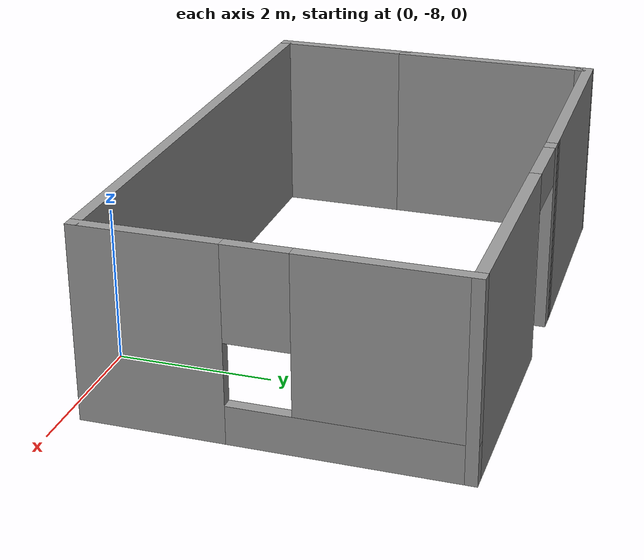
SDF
<?xml version='1.0'?>
<sdf version='1.7'>
  <model name='My_test_world'>
    <pose>-2.08062 -3.9025 0 0 -0 0</pose>
    <link name='Wall_0'>
      <collision name='Wall_0_Collision'>
        <geometry>
          <box>
            <size>2 0.15 2.5</size>
          </box>
        </geometry>
        <pose>0 0 1.25 0 -0 0</pose>
      </collision>
      <visual name='Wall_0_Visual'>
        <pose>0 0 1.25 0 -0 0</pose>
        <geometry>
          <box>
            <size>2 0.15 2.5</size>
          </box>
        </geometry>
        <material>
          <script>
            <uri>file://media/materials/scripts/gazebo.material</uri>
            <name>Gazebo/Grey</name>
          </script>
          <ambient>1 1 1 1</ambient>
        </material>
        <meta>
          <layer>0</layer>
        </meta>
      </visual>
      <pose>-3.54938 -2.9025 0 0 -0 -1.5708</pose>
    </link>
    <link name='Wall_1'>
      <collision name='Wall_1_Collision'>
        <geometry>
          <box>
            <size>7.25 0.15 2.5</size>
          </box>
        </geometry>
        <pose>0 0 1.25 0 -0 0</pose>
      </collision>
      <visual name='Wall_1_Visual'>
        <pose>0 0 1.25 0 -0 0</pose>
        <geometry>
          <box>
            <size>7.25 0.15 2.5</size>
          </box>
        </geometry>
        <material>
          <script>
            <uri>file://media/materials/scripts/gazebo.material</uri>
            <name>Gazebo/Grey</name>
          </script>
          <ambient>1 1 1 1</ambient>
        </material>
        <meta>
          <layer>0</layer>
        </meta>
      </visual>
      <pose>0.00062 -3.8275 0 0 -0 0</pose>
    </link>
    <link name='Wall_2'>
      <pose>3.55062 -1.5275 0 0 -0 1.5708</pose>
      <visual name='Wall_2_Visual_0'>
        <pose>-1.4625 0 1.25 0 -0 0</pose>
        <geometry>
          <box>
            <size>1.825 0.15 2.5</size>
          </box>
        </geometry>
        <material>
          <script>
            <uri>file://media/materials/scripts/gazebo.material</uri>
            <name>Gazebo/Grey</name>
          </script>
          <ambient>1 1 1 1</ambient>
        </material>
        <meta>
          <layer>0</layer>
        </meta>
      </visual>
      <collision name='Wall_2_Collision_0'>
        <geometry>
          <box>
            <size>1.825 0.15 2.5</size>
          </box>
        </geometry>
        <pose>-1.4625 0 1.25 0 -0 0</pose>
      </collision>
      <visual name='Wall_2_Visual_1'>
        <pose>0.9125 0 0.25 0 -0 0</pose>
        <geometry>
          <box>
            <size>2.925 0.15 0.5</size>
          </box>
        </geometry>
        <material>
          <script>
            <uri>file://media/materials/scripts/gazebo.material</uri>
            <name>Gazebo/Grey</name>
          </script>
          <ambient>1 1 1 1</ambient>
        </material>
        <meta>
          <layer>0</layer>
        </meta>
      </visual>
      <collision name='Wall_2_Collision_1'>
        <geometry>
          <box>
            <size>2.925 0.15 0.5</size>
          </box>
        </geometry>
        <pose>0.9125 0 0.25 0 -0 0</pose>
      </collision>
      <visual name='Wall_2_Visual_2'>
        <pose>1.3125 0 1.5 0 -0 0</pose>
        <geometry>
          <box>
            <size>2.125 0.15 2</size>
          </box>
        </geometry>
        <material>
          <script>
            <uri>file://media/materials/scripts/gazebo.material</uri>
            <name>Gazebo/Grey</name>
          </script>
          <ambient>1 1 1 1</ambient>
        </material>
        <meta>
          <layer>0</layer>
        </meta>
      </visual>
      <collision name='Wall_2_Collision_2'>
        <geometry>
          <box>
            <size>2.125 0.15 2</size>
          </box>
        </geometry>
        <pose>1.3125 0 1.5 0 -0 0</pose>
      </collision>
      <visual name='Wall_2_Visual_3'>
        <pose>-0.15 0 1.9 0 -0 0</pose>
        <geometry>
          <box>
            <size>0.8 0.15 1.2</size>
          </box>
        </geometry>
        <material>
          <script>
            <uri>file://media/materials/scripts/gazebo.material</uri>
            <name>Gazebo/Grey</name>
          </script>
          <ambient>1 1 1 1</ambient>
        </material>
        <meta>
          <layer>0</layer>
        </meta>
      </visual>
      <collision name='Wall_2_Collision_3'>
        <geometry>
          <box>
            <size>0.8 0.15 1.2</size>
          </box>
        </geometry>
        <pose>-0.15 0 1.9 0 -0 0</pose>
      </collision>
    </link>
    <link name='Wall_3'>
      <pose>1.50062 0.7725 0 0 -0 3.14159</pose>
      <visual name='Wall_3_Visual_0'>
        <pose>-0.6125 0 1.25 0 -0 0</pose>
        <geometry>
          <box>
            <size>3.025 0.15 2.5</size>
          </box>
        </geometry>
        <material>
          <script>
            <uri>file://media/materials/scripts/gazebo.material</uri>
            <name>Gazebo/Grey</name>
          </script>
          <ambient>1 1 1 1</ambient>
        </material>
        <meta>
          <layer>0</layer>
        </meta>
      </visual>
      <collision name='Wall_3_Collision_0'>
        <geometry>
          <box>
            <size>3.025 0.15 2.5</size>
          </box>
        </geometry>
        <pose>-0.6125 0 1.25 0 -0 0</pose>
      </collision>
      <visual name='Wall_3_Visual_1'>
        <pose>1.9625 0 1.25 0 -0 0</pose>
        <geometry>
          <box>
            <size>0.325 0.15 2.5</size>
          </box>
        </geometry>
        <material>
          <script>
            <uri>file://media/materials/scripts/gazebo.material</uri>
            <name>Gazebo/Grey</name>
          </script>
          <ambient>1 1 1 1</ambient>
        </material>
        <meta>
          <layer>0</layer>
        </meta>
      </visual>
      <collision name='Wall_3_Collision_1'>
        <geometry>
          <box>
            <size>0.325 0.15 2.5</size>
          </box>
        </geometry>
        <pose>1.9625 0 1.25 0 -0 0</pose>
      </collision>
      <visual name='Wall_3_Visual_2'>
        <pose>1.35 0 2.25 0 -0 0</pose>
        <geometry>
          <box>
            <size>0.9 0.15 0.5</size>
          </box>
        </geometry>
        <material>
          <script>
            <uri>file://media/materials/scripts/gazebo.material</uri>
            <name>Gazebo/Grey</name>
          </script>
          <ambient>1 1 1 1</ambient>
        </material>
        <meta>
          <layer>0</layer>
        </meta>
      </visual>
      <collision name='Wall_3_Collision_2'>
        <geometry>
          <box>
            <size>0.9 0.15 0.5</size>
          </box>
        </geometry>
        <pose>1.35 0 2.25 0 -0 0</pose>
      </collision>
    </link>
    <link name='Wall_5'>
      <collision name='Wall_5_Collision'>
        <geometry>
          <box>
            <size>2.75 0.15 2.5</size>
          </box>
        </geometry>
        <pose>0 0 1.25 0 -0 0</pose>
      </collision>
      <visual name='Wall_5_Visual'>
        <pose>0 0 1.25 0 -0 0</pose>
        <geometry>
          <box>
            <size>2.75 0.15 2.5</size>
          </box>
        </geometry>
        <material>
          <script>
            <uri>file://media/materials/scripts/gazebo.material</uri>
            <name>Gazebo/Grey</name>
          </script>
          <ambient>1 1 1 1</ambient>
        </material>
        <meta>
          <layer>0</layer>
        </meta>
      </visual>
      <pose>-3.54938 -0.6775 0 0 -0 1.5708</pose>
    </link>
    <link name='Wall_6'>
      <collision name='Wall_6_Collision'>
        <geometry>
          <box>
            <size>0.25 0.15 2.5</size>
          </box>
        </geometry>
        <pose>0 0 1.25 0 -0 0</pose>
      </collision>
      <visual name='Wall_6_Visual'>
        <pose>0 0 1.25 0 -0 0</pose>
        <geometry>
          <box>
            <size>0.25 0.15 2.5</size>
          </box>
        </geometry>
        <material>
          <script>
            <uri>file://media/materials/scripts/gazebo.material</uri>
            <name>Gazebo/Grey</name>
          </script>
          <ambient>1 1 1 1</ambient>
        </material>
        <meta>
          <layer>0</layer>
        </meta>
      </visual>
      <pose>-3.54938 0.6725 0 0 -0 1.5708</pose>
    </link>
    <link name='Wall_7'>
      <collision name='Wall_7_Collision'>
        <geometry>
          <box>
            <size>0.25 0.15 2.5</size>
          </box>
        </geometry>
        <pose>0 0 1.25 0 -0 0</pose>
      </collision>
      <visual name='Wall_7_Visual'>
        <pose>0 0 1.25 0 -0 0</pose>
        <geometry>
          <box>
            <size>0.25 0.15 2.5</size>
          </box>
        </geometry>
        <material>
          <script>
            <uri>file://media/materials/scripts/gazebo.material</uri>
            <name>Gazebo/Grey</name>
          </script>
          <ambient>1 1 1 1</ambient>
        </material>
        <meta>
          <layer>0</layer>
        </meta>
      </visual>
      <pose>-3.54938 0.6725 0 0 -0 -1.5708</pose>
    </link>
    <link name='Wall_9'>
      <collision name='Wall_9_Collision'>
        <geometry>
          <box>
            <size>3.15042 0.15 2.5</size>
          </box>
        </geometry>
        <pose>0 0 1.25 0 -0 0</pose>
      </collision>
      <visual name='Wall_9_Visual'>
        <pose>0 0 1.25 0 -0 0</pose>
        <geometry>
          <box>
            <size>3.15042 0.15 2.5</size>
          </box>
        </geometry>
        <material>
          <script>
            <uri>file://media/materials/scripts/gazebo.material</uri>
            <name>Gazebo/Grey</name>
          </script>
          <ambient>1 1 1 1</ambient>
        </material>
        <meta>
          <layer>0</layer>
        </meta>
      </visual>
      <pose>-2.04938 0.7475 0 0 -0 -3.12493</pose>
    </link>
    <static>1</static>
  </model>
</sdf>
